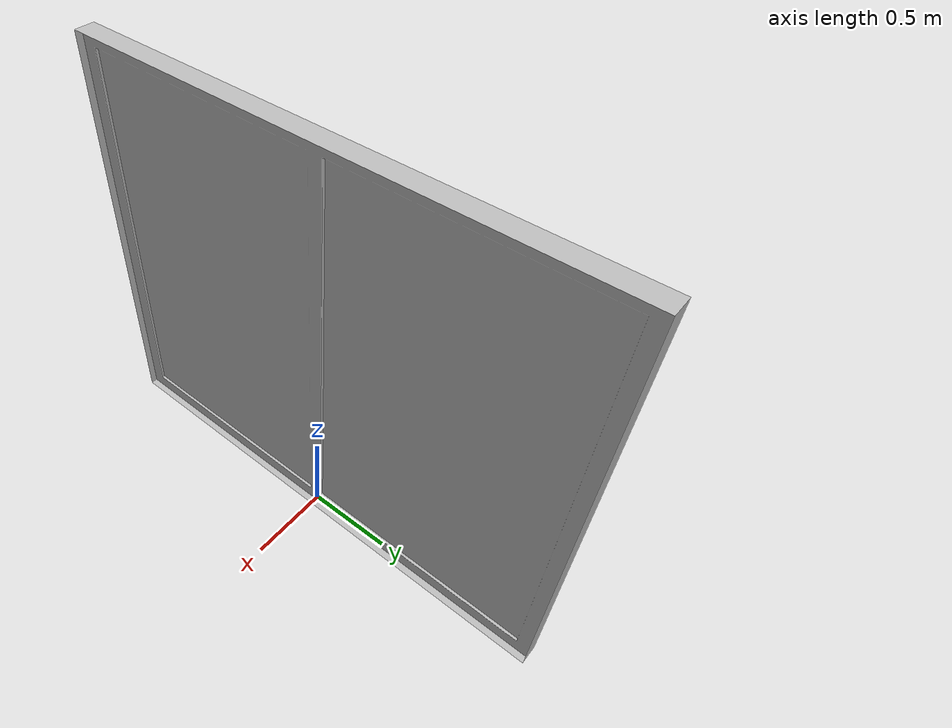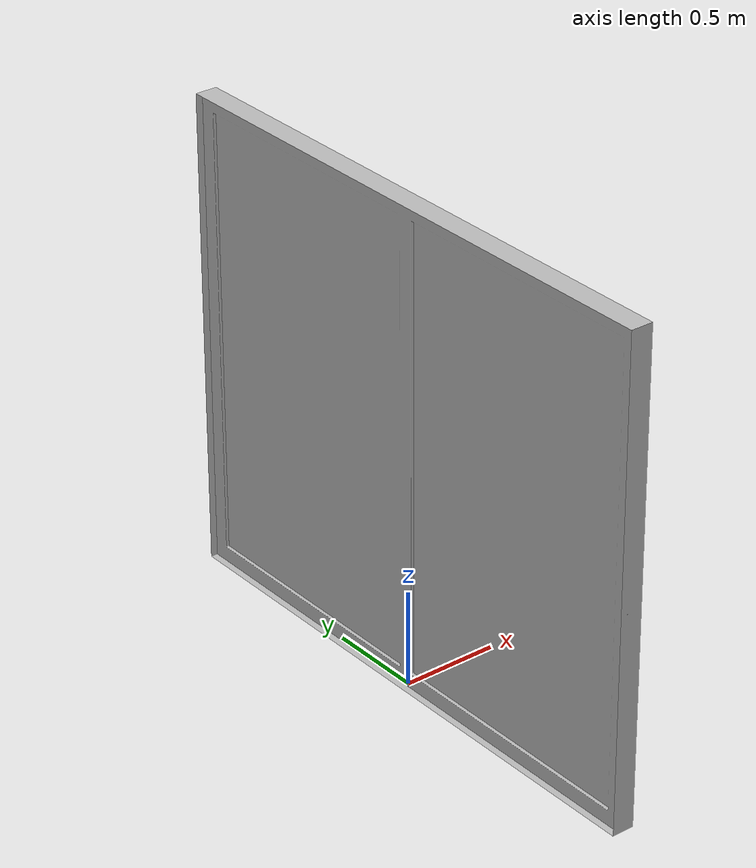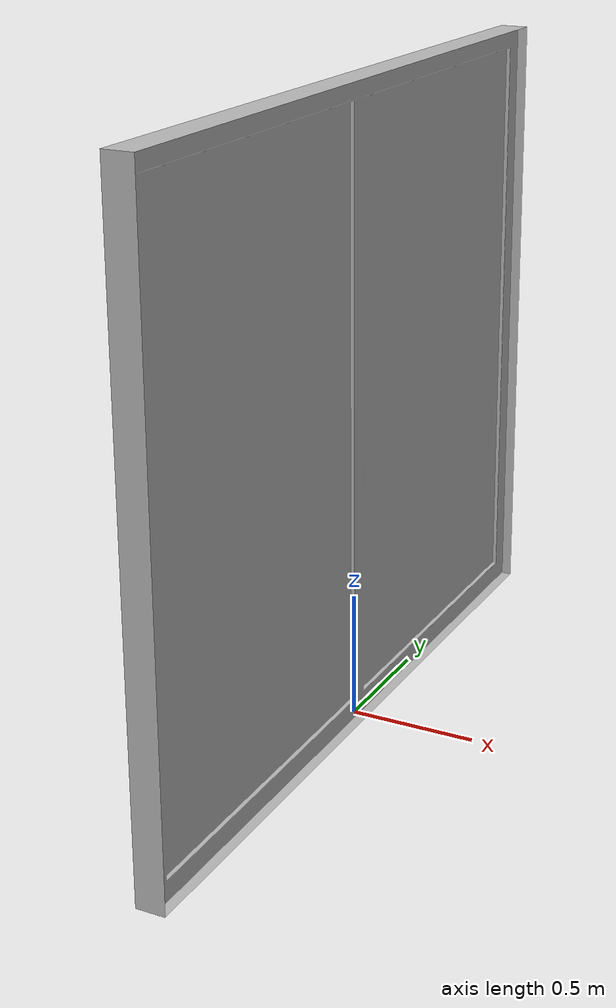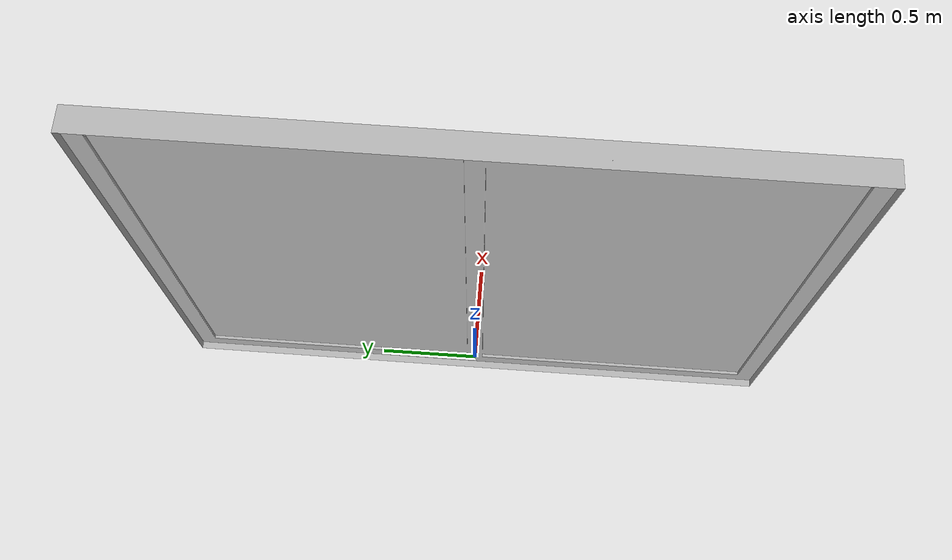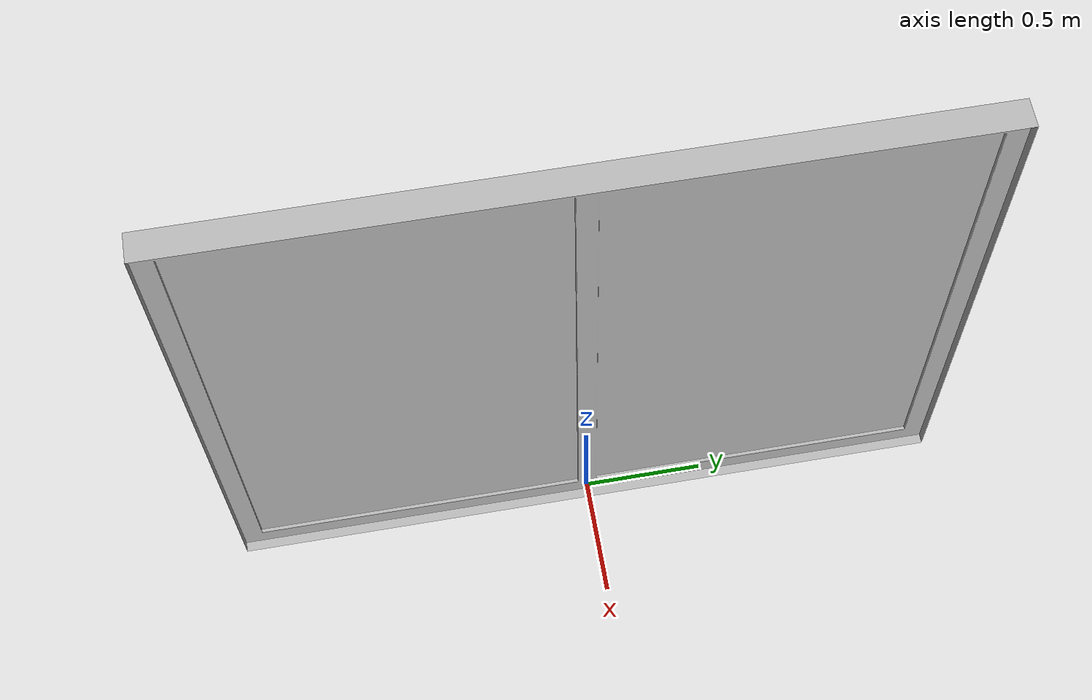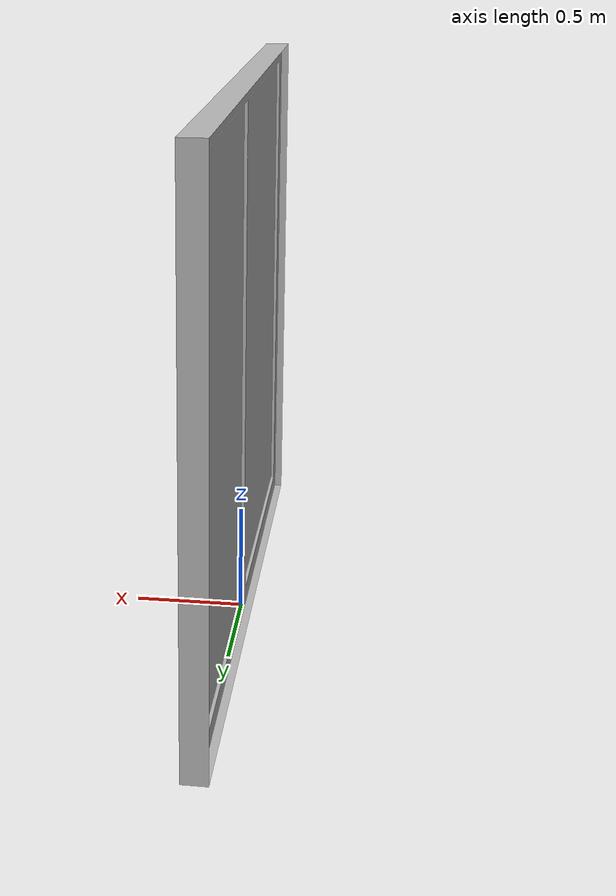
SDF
<?xml version='1.0'?>
<sdf version='1.4'>
  <model name='753'>
    <pose>0 0 0 0 0 0</pose>
    <static>true</static>
    <link name='link'>
      <collision name='collision'>
        <pose>0 0 0 0 0 0</pose>
        <geometry>
          <box>
            <size>0.115 3 2</size>
          </box>
        </geometry>
      </collision>
      <visual name='visual'>
        <pose>0 0 0 0 0 0</pose>
        <geometry>
          <mesh><uri>model://753/753.dae</uri></mesh>
        </geometry>
      </visual>
    </link>
  </model>
</sdf>
